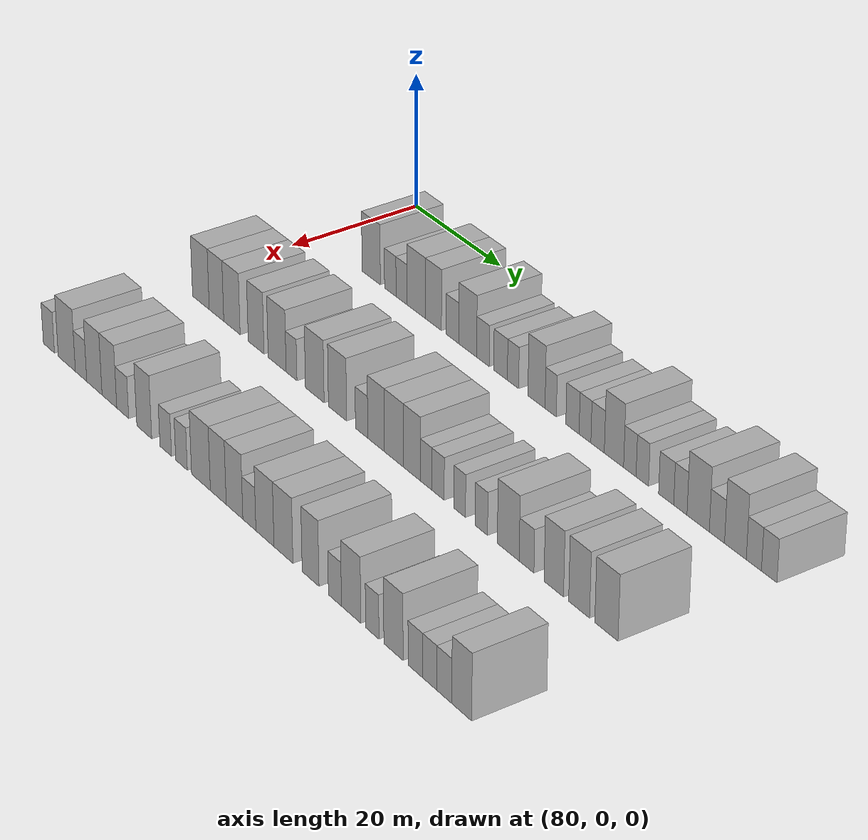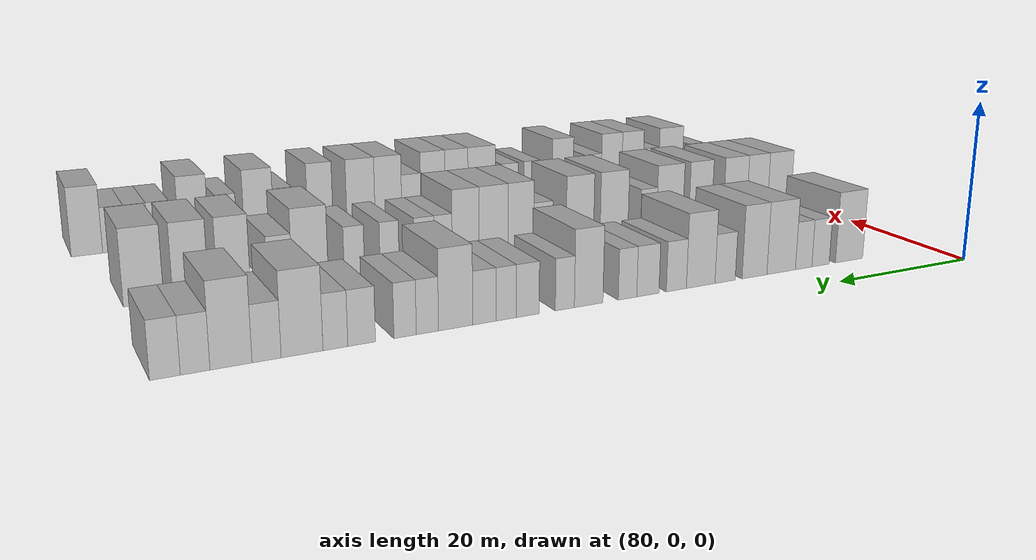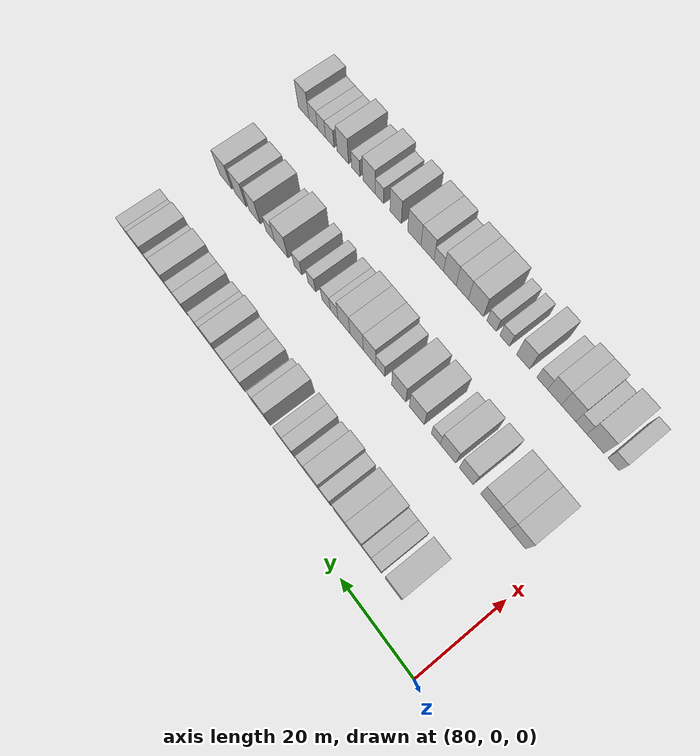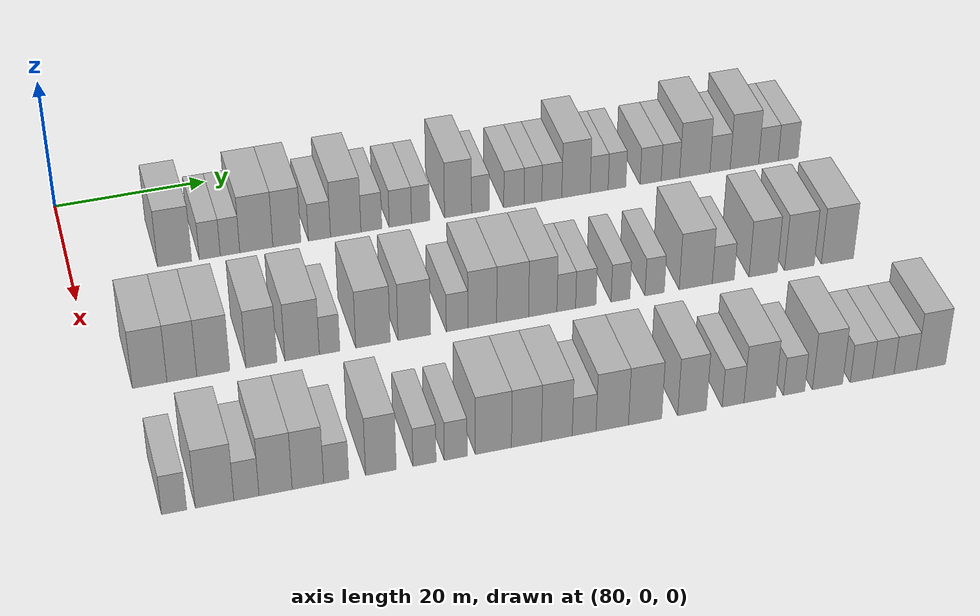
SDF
<sdf version="1.6">
 <world name="default">
  <model name="building_673">
   <static>1</static>
   <pose>91.0000 13.1581 0 0.000000 0.000000 0.000000</pose>
   <link name="link">
    <pose>0 0 4.50 0 0 0</pose>
    <collision name="collision"><geometry><box><size>10.0000 4.4125 9.0000</size></box></geometry></collision>
    <visual name="visual">
     <cast_shadows>0</cast_shadows>
     <geometry><box><size>10.0000 4.4125 9.0000</size></box></geometry>
     <material>
      <script>
       <uri>model://HANNAS_wall/materials/scripts</uri>
       <uri>model://HANNAS_wall/materials/textures</uri>
       <name>vrc/HANNAS_wall</name>
      </script>
     </material>
    </visual>
   </link>
  </model>
  <model name="building_674">
   <static>1</static>
   <pose>91.0000 17.7296 0 0.000000 0.000000 0.000000</pose>
   <link name="link">
    <pose>0 0 3.00 0 0 0</pose>
    <collision name="collision"><geometry><box><size>10.0000 2.7305 6.0000</size></box></geometry></collision>
    <visual name="visual">
     <cast_shadows>0</cast_shadows>
     <geometry><box><size>10.0000 2.7305 6.0000</size></box></geometry>
     <material>
      <script>
       <uri>model://HANNAS_wall/materials/scripts</uri>
       <uri>model://HANNAS_wall/materials/textures</uri>
       <name>vrc/HANNAS_wall</name>
      </script>
     </material>
    </visual>
   </link>
  </model>
  <model name="building_675">
   <static>1</static>
   <pose>91.0000 20.3663 0 0.000000 0.000000 0.000000</pose>
   <link name="link">
    <pose>0 0 3.00 0 0 0</pose>
    <collision name="collision"><geometry><box><size>10.0000 2.5430 6.0000</size></box></geometry></collision>
    <visual name="visual">
     <cast_shadows>0</cast_shadows>
     <geometry><box><size>10.0000 2.5430 6.0000</size></box></geometry>
     <material>
      <script>
       <uri>model://HANNAS_wall/materials/scripts</uri>
       <uri>model://HANNAS_wall/materials/textures</uri>
       <name>vrc/HANNAS_wall</name>
      </script>
     </material>
    </visual>
   </link>
  </model>
  <model name="building_676">
   <static>1</static>
   <pose>91.0000 23.8106 0 0.000000 0.000000 0.000000</pose>
   <link name="link">
    <pose>0 0 4.50 0 0 0</pose>
    <collision name="collision"><geometry><box><size>10.0000 4.3457 9.0000</size></box></geometry></collision>
    <visual name="visual">
     <cast_shadows>0</cast_shadows>
     <geometry><box><size>10.0000 4.3457 9.0000</size></box></geometry>
     <material>
      <script>
       <uri>model://HANNAS_wall/materials/scripts</uri>
       <uri>model://HANNAS_wall/materials/textures</uri>
       <name>vrc/HANNAS_wall</name>
      </script>
     </material>
    </visual>
   </link>
  </model>
  <model name="building_677">
   <static>1</static>
   <pose>91.0000 27.8287 0 0.000000 0.000000 0.000000</pose>
   <link name="link">
    <pose>0 0 4.50 0 0 0</pose>
    <collision name="collision"><geometry><box><size>10.0000 3.6906 9.0000</size></box></geometry></collision>
    <visual name="visual">
     <cast_shadows>0</cast_shadows>
     <geometry><box><size>10.0000 3.6906 9.0000</size></box></geometry>
     <material>
      <script>
       <uri>model://HANNAS_wall/materials/scripts</uri>
       <uri>model://HANNAS_wall/materials/textures</uri>
       <name>vrc/HANNAS_wall</name>
      </script>
     </material>
    </visual>
   </link>
  </model>
  <model name="building_678">
   <static>1</static>
   <pose>91.0000 32.1381 0 0.000000 0.000000 0.000000</pose>
   <link name="link">
    <pose>0 0 3.00 0 0 0</pose>
    <collision name="collision"><geometry><box><size>10.0000 2.9281 6.0000</size></box></geometry></collision>
    <visual name="visual">
     <cast_shadows>0</cast_shadows>
     <geometry><box><size>10.0000 2.9281 6.0000</size></box></geometry>
     <material>
      <script>
       <uri>model://HANNAS_wall/materials/scripts</uri>
       <uri>model://HANNAS_wall/materials/textures</uri>
       <name>vrc/HANNAS_wall</name>
      </script>
     </material>
    </visual>
   </link>
  </model>
  <model name="building_679">
   <static>1</static>
   <pose>91.0000 35.6266 0 0.000000 0.000000 0.000000</pose>
   <link name="link">
    <pose>0 0 4.50 0 0 0</pose>
    <collision name="collision"><geometry><box><size>10.0000 4.0490 9.0000</size></box></geometry></collision>
    <visual name="visual">
     <cast_shadows>0</cast_shadows>
     <geometry><box><size>10.0000 4.0490 9.0000</size></box></geometry>
     <material>
      <script>
       <uri>model://HANNAS_wall/materials/scripts</uri>
       <uri>model://HANNAS_wall/materials/textures</uri>
       <name>vrc/HANNAS_wall</name>
      </script>
     </material>
    </visual>
   </link>
  </model>
  <model name="building_680">
   <static>1</static>
   <pose>91.0000 39.0452 0 0.000000 0.000000 0.000000</pose>
   <link name="link">
    <pose>0 0 3.00 0 0 0</pose>
    <collision name="collision"><geometry><box><size>10.0000 2.7884 6.0000</size></box></geometry></collision>
    <visual name="visual">
     <cast_shadows>0</cast_shadows>
     <geometry><box><size>10.0000 2.7884 6.0000</size></box></geometry>
     <material>
      <script>
       <uri>model://HANNAS_wall/materials/scripts</uri>
       <uri>model://HANNAS_wall/materials/textures</uri>
       <name>vrc/HANNAS_wall</name>
      </script>
     </material>
    </visual>
   </link>
  </model>
  <model name="building_681">
   <static>1</static>
   <pose>91.0000 42.9386 0 0.000000 0.000000 0.000000</pose>
   <link name="link">
    <pose>0 0 3.00 0 0 0</pose>
    <collision name="collision"><geometry><box><size>10.0000 2.9983 6.0000</size></box></geometry></collision>
    <visual name="visual">
     <cast_shadows>0</cast_shadows>
     <geometry><box><size>10.0000 2.9983 6.0000</size></box></geometry>
     <material>
      <script>
       <uri>model://HANNAS_wall/materials/scripts</uri>
       <uri>model://HANNAS_wall/materials/textures</uri>
       <name>vrc/HANNAS_wall</name>
      </script>
     </material>
    </visual>
   </link>
  </model>
  <model name="building_682">
   <static>1</static>
   <pose>91.0000 45.6671 0 0.000000 0.000000 0.000000</pose>
   <link name="link">
    <pose>0 0 3.00 0 0 0</pose>
    <collision name="collision"><geometry><box><size>10.0000 2.4587 6.0000</size></box></geometry></collision>
    <visual name="visual">
     <cast_shadows>0</cast_shadows>
     <geometry><box><size>10.0000 2.4587 6.0000</size></box></geometry>
     <material>
      <script>
       <uri>model://HANNAS_wall/materials/scripts</uri>
       <uri>model://HANNAS_wall/materials/textures</uri>
       <name>vrc/HANNAS_wall</name>
      </script>
     </material>
    </visual>
   </link>
  </model>
  <model name="building_683">
   <static>1</static>
   <pose>91.0000 50.7326 0 0.000000 0.000000 0.000000</pose>
   <link name="link">
    <pose>0 0 4.50 0 0 0</pose>
    <collision name="collision"><geometry><box><size>10.0000 3.6724 9.0000</size></box></geometry></collision>
    <visual name="visual">
     <cast_shadows>0</cast_shadows>
     <geometry><box><size>10.0000 3.6724 9.0000</size></box></geometry>
     <material>
      <script>
       <uri>model://HANNAS_wall/materials/scripts</uri>
       <uri>model://HANNAS_wall/materials/textures</uri>
       <name>vrc/HANNAS_wall</name>
      </script>
     </material>
    </visual>
   </link>
  </model>
  <model name="building_684">
   <static>1</static>
   <pose>91.0000 53.7698 0 0.000000 0.000000 0.000000</pose>
   <link name="link">
    <pose>0 0 3.00 0 0 0</pose>
    <collision name="collision"><geometry><box><size>10.0000 2.4019 6.0000</size></box></geometry></collision>
    <visual name="visual">
     <cast_shadows>0</cast_shadows>
     <geometry><box><size>10.0000 2.4019 6.0000</size></box></geometry>
     <material>
      <script>
       <uri>model://HANNAS_wall/materials/scripts</uri>
       <uri>model://HANNAS_wall/materials/textures</uri>
       <name>vrc/HANNAS_wall</name>
      </script>
     </material>
    </visual>
   </link>
  </model>
  <model name="building_685">
   <static>1</static>
   <pose>91.0000 58.3557 0 0.000000 0.000000 0.000000</pose>
   <link name="link">
    <pose>0 0 3.00 0 0 0</pose>
    <collision name="collision"><geometry><box><size>10.0000 2.7699 6.0000</size></box></geometry></collision>
    <visual name="visual">
     <cast_shadows>0</cast_shadows>
     <geometry><box><size>10.0000 2.7699 6.0000</size></box></geometry>
     <material>
      <script>
       <uri>model://HANNAS_wall/materials/scripts</uri>
       <uri>model://HANNAS_wall/materials/textures</uri>
       <name>vrc/HANNAS_wall</name>
      </script>
     </material>
    </visual>
   </link>
  </model>
  <model name="building_686">
   <static>1</static>
   <pose>91.0000 60.9653 0 0.000000 0.000000 0.000000</pose>
   <link name="link">
    <pose>0 0 3.00 0 0 0</pose>
    <collision name="collision"><geometry><box><size>10.0000 2.4493 6.0000</size></box></geometry></collision>
    <visual name="visual">
     <cast_shadows>0</cast_shadows>
     <geometry><box><size>10.0000 2.4493 6.0000</size></box></geometry>
     <material>
      <script>
       <uri>model://HANNAS_wall/materials/scripts</uri>
       <uri>model://HANNAS_wall/materials/textures</uri>
       <name>vrc/HANNAS_wall</name>
      </script>
     </material>
    </visual>
   </link>
  </model>
  <model name="building_687">
   <static>1</static>
   <pose>91.0000 63.5681 0 0.000000 0.000000 0.000000</pose>
   <link name="link">
    <pose>0 0 3.00 0 0 0</pose>
    <collision name="collision"><geometry><box><size>10.0000 2.7565 6.0000</size></box></geometry></collision>
    <visual name="visual">
     <cast_shadows>0</cast_shadows>
     <geometry><box><size>10.0000 2.7565 6.0000</size></box></geometry>
     <material>
      <script>
       <uri>model://HANNAS_wall/materials/scripts</uri>
       <uri>model://HANNAS_wall/materials/textures</uri>
       <name>vrc/HANNAS_wall</name>
      </script>
     </material>
    </visual>
   </link>
  </model>
  <model name="building_688">
   <static>1</static>
   <pose>91.0000 66.9084 0 0.000000 0.000000 0.000000</pose>
   <link name="link">
    <pose>0 0 4.50 0 0 0</pose>
    <collision name="collision"><geometry><box><size>10.0000 3.9240 9.0000</size></box></geometry></collision>
    <visual name="visual">
     <cast_shadows>0</cast_shadows>
     <geometry><box><size>10.0000 3.9240 9.0000</size></box></geometry>
     <material>
      <script>
       <uri>model://HANNAS_wall/materials/scripts</uri>
       <uri>model://HANNAS_wall/materials/textures</uri>
       <name>vrc/HANNAS_wall</name>
      </script>
     </material>
    </visual>
   </link>
  </model>
  <model name="building_689">
   <static>1</static>
   <pose>91.0000 70.1219 0 0.000000 0.000000 0.000000</pose>
   <link name="link">
    <pose>0 0 3.00 0 0 0</pose>
    <collision name="collision"><geometry><box><size>10.0000 2.5031 6.0000</size></box></geometry></collision>
    <visual name="visual">
     <cast_shadows>0</cast_shadows>
     <geometry><box><size>10.0000 2.5031 6.0000</size></box></geometry>
     <material>
      <script>
       <uri>model://HANNAS_wall/materials/scripts</uri>
       <uri>model://HANNAS_wall/materials/textures</uri>
       <name>vrc/HANNAS_wall</name>
      </script>
     </material>
    </visual>
   </link>
  </model>
  <model name="building_690">
   <static>1</static>
   <pose>91.0000 72.6134 0 0.000000 0.000000 0.000000</pose>
   <link name="link">
    <pose>0 0 3.00 0 0 0</pose>
    <collision name="collision"><geometry><box><size>10.0000 2.4798 6.0000</size></box></geometry></collision>
    <visual name="visual">
     <cast_shadows>0</cast_shadows>
     <geometry><box><size>10.0000 2.4798 6.0000</size></box></geometry>
     <material>
      <script>
       <uri>model://HANNAS_wall/materials/scripts</uri>
       <uri>model://HANNAS_wall/materials/textures</uri>
       <name>vrc/HANNAS_wall</name>
      </script>
     </material>
    </visual>
   </link>
  </model>
  <model name="building_691">
   <static>1</static>
   <pose>91.0000 77.3318 0 0.000000 0.000000 0.000000</pose>
   <link name="link">
    <pose>0 0 3.00 0 0 0</pose>
    <collision name="collision"><geometry><box><size>10.0000 2.9570 6.0000</size></box></geometry></collision>
    <visual name="visual">
     <cast_shadows>0</cast_shadows>
     <geometry><box><size>10.0000 2.9570 6.0000</size></box></geometry>
     <material>
      <script>
       <uri>model://HANNAS_wall/materials/scripts</uri>
       <uri>model://HANNAS_wall/materials/textures</uri>
       <name>vrc/HANNAS_wall</name>
      </script>
     </material>
    </visual>
   </link>
  </model>
  <model name="building_692">
   <static>1</static>
   <pose>91.0000 80.1085 0 0.000000 0.000000 0.000000</pose>
   <link name="link">
    <pose>0 0 3.00 0 0 0</pose>
    <collision name="collision"><geometry><box><size>10.0000 2.5963 6.0000</size></box></geometry></collision>
    <visual name="visual">
     <cast_shadows>0</cast_shadows>
     <geometry><box><size>10.0000 2.5963 6.0000</size></box></geometry>
     <material>
      <script>
       <uri>model://HANNAS_wall/materials/scripts</uri>
       <uri>model://HANNAS_wall/materials/textures</uri>
       <name>vrc/HANNAS_wall</name>
      </script>
     </material>
    </visual>
   </link>
  </model>
  <model name="building_693">
   <static>1</static>
   <pose>91.0000 83.5472 0 0.000000 0.000000 0.000000</pose>
   <link name="link">
    <pose>0 0 4.50 0 0 0</pose>
    <collision name="collision"><geometry><box><size>10.0000 4.2810 9.0000</size></box></geometry></collision>
    <visual name="visual">
     <cast_shadows>0</cast_shadows>
     <geometry><box><size>10.0000 4.2810 9.0000</size></box></geometry>
     <material>
      <script>
       <uri>model://HANNAS_wall/materials/scripts</uri>
       <uri>model://HANNAS_wall/materials/textures</uri>
       <name>vrc/HANNAS_wall</name>
      </script>
     </material>
    </visual>
   </link>
  </model>
  <model name="building_694">
   <static>1</static>
   <pose>91.0000 87.1353 0 0.000000 0.000000 0.000000</pose>
   <link name="link">
    <pose>0 0 3.00 0 0 0</pose>
    <collision name="collision"><geometry><box><size>10.0000 2.8952 6.0000</size></box></geometry></collision>
    <visual name="visual">
     <cast_shadows>0</cast_shadows>
     <geometry><box><size>10.0000 2.8952 6.0000</size></box></geometry>
     <material>
      <script>
       <uri>model://HANNAS_wall/materials/scripts</uri>
       <uri>model://HANNAS_wall/materials/textures</uri>
       <name>vrc/HANNAS_wall</name>
      </script>
     </material>
    </visual>
   </link>
  </model>
  <model name="building_695">
   <static>1</static>
   <pose>91.0000 90.6201 0 0.000000 0.000000 0.000000</pose>
   <link name="link">
    <pose>0 0 4.50 0 0 0</pose>
    <collision name="collision"><geometry><box><size>10.0000 4.0743 9.0000</size></box></geometry></collision>
    <visual name="visual">
     <cast_shadows>0</cast_shadows>
     <geometry><box><size>10.0000 4.0743 9.0000</size></box></geometry>
     <material>
      <script>
       <uri>model://HANNAS_wall/materials/scripts</uri>
       <uri>model://HANNAS_wall/materials/textures</uri>
       <name>vrc/HANNAS_wall</name>
      </script>
     </material>
    </visual>
   </link>
  </model>
  <model name="building_696">
   <static>1</static>
   <pose>91.0000 94.0602 0 0.000000 0.000000 0.000000</pose>
   <link name="link">
    <pose>0 0 3.00 0 0 0</pose>
    <collision name="collision"><geometry><box><size>10.0000 2.8060 6.0000</size></box></geometry></collision>
    <visual name="visual">
     <cast_shadows>0</cast_shadows>
     <geometry><box><size>10.0000 2.8060 6.0000</size></box></geometry>
     <material>
      <script>
       <uri>model://HANNAS_wall/materials/scripts</uri>
       <uri>model://HANNAS_wall/materials/textures</uri>
       <name>vrc/HANNAS_wall</name>
      </script>
     </material>
    </visual>
   </link>
  </model>
  <model name="building_697">
   <static>1</static>
   <pose>91.0000 96.8893 0 0.000000 0.000000 0.000000</pose>
   <link name="link">
    <pose>0 0 3.00 0 0 0</pose>
    <collision name="collision"><geometry><box><size>10.0000 2.8521 6.0000</size></box></geometry></collision>
    <visual name="visual">
     <cast_shadows>0</cast_shadows>
     <geometry><box><size>10.0000 2.8521 6.0000</size></box></geometry>
     <material>
      <script>
       <uri>model://HANNAS_wall/materials/scripts</uri>
       <uri>model://HANNAS_wall/materials/textures</uri>
       <name>vrc/HANNAS_wall</name>
      </script>
     </material>
    </visual>
   </link>
  </model>
  <model name="building_865">
   <static>1</static>
   <pose>113.0000 6.3063 0 0.000000 0.000000 0.000000</pose>
   <link name="link">
    <pose>0 0 4.50 0 0 0</pose>
    <collision name="collision"><geometry><box><size>10.0000 4.2231 9.0000</size></box></geometry></collision>
    <visual name="visual">
     <cast_shadows>0</cast_shadows>
     <geometry><box><size>10.0000 4.2231 9.0000</size></box></geometry>
     <material>
      <script>
       <uri>model://HANNAS_wall/materials/scripts</uri>
       <uri>model://HANNAS_wall/materials/textures</uri>
       <name>vrc/HANNAS_wall</name>
      </script>
     </material>
    </visual>
   </link>
  </model>
  <model name="building_866">
   <static>1</static>
   <pose>113.0000 10.2472 0 0.000000 0.000000 0.000000</pose>
   <link name="link">
    <pose>0 0 4.50 0 0 0</pose>
    <collision name="collision"><geometry><box><size>10.0000 3.6586 9.0000</size></box></geometry></collision>
    <visual name="visual">
     <cast_shadows>0</cast_shadows>
     <geometry><box><size>10.0000 3.6586 9.0000</size></box></geometry>
     <material>
      <script>
       <uri>model://HANNAS_wall/materials/scripts</uri>
       <uri>model://HANNAS_wall/materials/textures</uri>
       <name>vrc/HANNAS_wall</name>
      </script>
     </material>
    </visual>
   </link>
  </model>
  <model name="building_867">
   <static>1</static>
   <pose>113.0000 14.1046 0 0.000000 0.000000 0.000000</pose>
   <link name="link">
    <pose>0 0 4.50 0 0 0</pose>
    <collision name="collision"><geometry><box><size>10.0000 4.0563 9.0000</size></box></geometry></collision>
    <visual name="visual">
     <cast_shadows>0</cast_shadows>
     <geometry><box><size>10.0000 4.0563 9.0000</size></box></geometry>
     <material>
      <script>
       <uri>model://HANNAS_wall/materials/scripts</uri>
       <uri>model://HANNAS_wall/materials/textures</uri>
       <name>vrc/HANNAS_wall</name>
      </script>
     </material>
    </visual>
   </link>
  </model>
  <model name="building_868">
   <static>1</static>
   <pose>113.0000 20.0534 0 0.000000 0.000000 0.000000</pose>
   <link name="link">
    <pose>0 0 4.50 0 0 0</pose>
    <collision name="collision"><geometry><box><size>10.0000 3.8412 9.0000</size></box></geometry></collision>
    <visual name="visual">
     <cast_shadows>0</cast_shadows>
     <geometry><box><size>10.0000 3.8412 9.0000</size></box></geometry>
     <material>
      <script>
       <uri>model://HANNAS_wall/materials/scripts</uri>
       <uri>model://HANNAS_wall/materials/textures</uri>
       <name>vrc/HANNAS_wall</name>
      </script>
     </material>
    </visual>
   </link>
  </model>
  <model name="building_869">
   <static>1</static>
   <pose>113.0000 25.1283 0 0.000000 0.000000 0.000000</pose>
   <link name="link">
    <pose>0 0 4.50 0 0 0</pose>
    <collision name="collision"><geometry><box><size>10.0000 4.3086 9.0000</size></box></geometry></collision>
    <visual name="visual">
     <cast_shadows>0</cast_shadows>
     <geometry><box><size>10.0000 4.3086 9.0000</size></box></geometry>
     <material>
      <script>
       <uri>model://HANNAS_wall/materials/scripts</uri>
       <uri>model://HANNAS_wall/materials/textures</uri>
       <name>vrc/HANNAS_wall</name>
      </script>
     </material>
    </visual>
   </link>
  </model>
  <model name="building_870">
   <static>1</static>
   <pose>113.0000 28.5638 0 0.000000 0.000000 0.000000</pose>
   <link name="link">
    <pose>0 0 3.00 0 0 0</pose>
    <collision name="collision"><geometry><box><size>10.0000 2.5622 6.0000</size></box></geometry></collision>
    <visual name="visual">
     <cast_shadows>0</cast_shadows>
     <geometry><box><size>10.0000 2.5622 6.0000</size></box></geometry>
     <material>
      <script>
       <uri>model://HANNAS_wall/materials/scripts</uri>
       <uri>model://HANNAS_wall/materials/textures</uri>
       <name>vrc/HANNAS_wall</name>
      </script>
     </material>
    </visual>
   </link>
  </model>
  <model name="building_871">
   <static>1</static>
   <pose>113.0000 34.0221 0 0.000000 0.000000 0.000000</pose>
   <link name="link">
    <pose>0 0 4.50 0 0 0</pose>
    <collision name="collision"><geometry><box><size>10.0000 4.3545 9.0000</size></box></geometry></collision>
    <visual name="visual">
     <cast_shadows>0</cast_shadows>
     <geometry><box><size>10.0000 4.3545 9.0000</size></box></geometry>
     <material>
      <script>
       <uri>model://HANNAS_wall/materials/scripts</uri>
       <uri>model://HANNAS_wall/materials/textures</uri>
       <name>vrc/HANNAS_wall</name>
      </script>
     </material>
    </visual>
   </link>
  </model>
  <model name="building_872">
   <static>1</static>
   <pose>113.0000 39.2818 0 0.000000 0.000000 0.000000</pose>
   <link name="link">
    <pose>0 0 4.50 0 0 0</pose>
    <collision name="collision"><geometry><box><size>10.0000 4.1649 9.0000</size></box></geometry></collision>
    <visual name="visual">
     <cast_shadows>0</cast_shadows>
     <geometry><box><size>10.0000 4.1649 9.0000</size></box></geometry>
     <material>
      <script>
       <uri>model://HANNAS_wall/materials/scripts</uri>
       <uri>model://HANNAS_wall/materials/textures</uri>
       <name>vrc/HANNAS_wall</name>
      </script>
     </material>
    </visual>
   </link>
  </model>
  <model name="building_873">
   <static>1</static>
   <pose>113.0000 44.7479 0 0.000000 0.000000 0.000000</pose>
   <link name="link">
    <pose>0 0 3.00 0 0 0</pose>
    <collision name="collision"><geometry><box><size>10.0000 2.7672 6.0000</size></box></geometry></collision>
    <visual name="visual">
     <cast_shadows>0</cast_shadows>
     <geometry><box><size>10.0000 2.7672 6.0000</size></box></geometry>
     <material>
      <script>
       <uri>model://HANNAS_wall/materials/scripts</uri>
       <uri>model://HANNAS_wall/materials/textures</uri>
       <name>vrc/HANNAS_wall</name>
      </script>
     </material>
    </visual>
   </link>
  </model>
  <model name="building_874">
   <static>1</static>
   <pose>113.0000 47.9868 0 0.000000 0.000000 0.000000</pose>
   <link name="link">
    <pose>0 0 4.50 0 0 0</pose>
    <collision name="collision"><geometry><box><size>10.0000 3.7106 9.0000</size></box></geometry></collision>
    <visual name="visual">
     <cast_shadows>0</cast_shadows>
     <geometry><box><size>10.0000 3.7106 9.0000</size></box></geometry>
     <material>
      <script>
       <uri>model://HANNAS_wall/materials/scripts</uri>
       <uri>model://HANNAS_wall/materials/textures</uri>
       <name>vrc/HANNAS_wall</name>
      </script>
     </material>
    </visual>
   </link>
  </model>
  <model name="building_875">
   <static>1</static>
   <pose>113.0000 51.9077 0 0.000000 0.000000 0.000000</pose>
   <link name="link">
    <pose>0 0 4.50 0 0 0</pose>
    <collision name="collision"><geometry><box><size>10.0000 4.1312 9.0000</size></box></geometry></collision>
    <visual name="visual">
     <cast_shadows>0</cast_shadows>
     <geometry><box><size>10.0000 4.1312 9.0000</size></box></geometry>
     <material>
      <script>
       <uri>model://HANNAS_wall/materials/scripts</uri>
       <uri>model://HANNAS_wall/materials/textures</uri>
       <name>vrc/HANNAS_wall</name>
      </script>
     </material>
    </visual>
   </link>
  </model>
  <model name="building_876">
   <static>1</static>
   <pose>113.0000 55.8192 0 0.000000 0.000000 0.000000</pose>
   <link name="link">
    <pose>0 0 4.50 0 0 0</pose>
    <collision name="collision"><geometry><box><size>10.0000 3.6919 9.0000</size></box></geometry></collision>
    <visual name="visual">
     <cast_shadows>0</cast_shadows>
     <geometry><box><size>10.0000 3.6919 9.0000</size></box></geometry>
     <material>
      <script>
       <uri>model://HANNAS_wall/materials/scripts</uri>
       <uri>model://HANNAS_wall/materials/textures</uri>
       <name>vrc/HANNAS_wall</name>
      </script>
     </material>
    </visual>
   </link>
  </model>
  <model name="building_877">
   <static>1</static>
   <pose>113.0000 58.8852 0 0.000000 0.000000 0.000000</pose>
   <link name="link">
    <pose>0 0 3.00 0 0 0</pose>
    <collision name="collision"><geometry><box><size>10.0000 2.4401 6.0000</size></box></geometry></collision>
    <visual name="visual">
     <cast_shadows>0</cast_shadows>
     <geometry><box><size>10.0000 2.4401 6.0000</size></box></geometry>
     <material>
      <script>
       <uri>model://HANNAS_wall/materials/scripts</uri>
       <uri>model://HANNAS_wall/materials/textures</uri>
       <name>vrc/HANNAS_wall</name>
      </script>
     </material>
    </visual>
   </link>
  </model>
  <model name="building_878">
   <static>1</static>
   <pose>113.0000 61.4410 0 0.000000 0.000000 0.000000</pose>
   <link name="link">
    <pose>0 0 3.00 0 0 0</pose>
    <collision name="collision"><geometry><box><size>10.0000 2.6716 6.0000</size></box></geometry></collision>
    <visual name="visual">
     <cast_shadows>0</cast_shadows>
     <geometry><box><size>10.0000 2.6716 6.0000</size></box></geometry>
     <material>
      <script>
       <uri>model://HANNAS_wall/materials/scripts</uri>
       <uri>model://HANNAS_wall/materials/textures</uri>
       <name>vrc/HANNAS_wall</name>
      </script>
     </material>
    </visual>
   </link>
  </model>
  <model name="building_879">
   <static>1</static>
   <pose>113.0000 66.0149 0 0.000000 0.000000 0.000000</pose>
   <link name="link">
    <pose>0 0 3.00 0 0 0</pose>
    <collision name="collision"><geometry><box><size>10.0000 2.4762 6.0000</size></box></geometry></collision>
    <visual name="visual">
     <cast_shadows>0</cast_shadows>
     <geometry><box><size>10.0000 2.4762 6.0000</size></box></geometry>
     <material>
      <script>
       <uri>model://HANNAS_wall/materials/scripts</uri>
       <uri>model://HANNAS_wall/materials/textures</uri>
       <name>vrc/HANNAS_wall</name>
      </script>
     </material>
    </visual>
   </link>
  </model>
  <model name="building_880">
   <static>1</static>
   <pose>113.0000 70.5360 0 0.000000 0.000000 0.000000</pose>
   <link name="link">
    <pose>0 0 3.00 0 0 0</pose>
    <collision name="collision"><geometry><box><size>10.0000 2.5661 6.0000</size></box></geometry></collision>
    <visual name="visual">
     <cast_shadows>0</cast_shadows>
     <geometry><box><size>10.0000 2.5661 6.0000</size></box></geometry>
     <material>
      <script>
       <uri>model://HANNAS_wall/materials/scripts</uri>
       <uri>model://HANNAS_wall/materials/textures</uri>
       <name>vrc/HANNAS_wall</name>
      </script>
     </material>
    </visual>
   </link>
  </model>
  <model name="building_881">
   <static>1</static>
   <pose>113.0000 76.0263 0 0.000000 0.000000 0.000000</pose>
   <link name="link">
    <pose>0 0 4.50 0 0 0</pose>
    <collision name="collision"><geometry><box><size>10.0000 4.4145 9.0000</size></box></geometry></collision>
    <visual name="visual">
     <cast_shadows>0</cast_shadows>
     <geometry><box><size>10.0000 4.4145 9.0000</size></box></geometry>
     <material>
      <script>
       <uri>model://HANNAS_wall/materials/scripts</uri>
       <uri>model://HANNAS_wall/materials/textures</uri>
       <name>vrc/HANNAS_wall</name>
      </script>
     </material>
    </visual>
   </link>
  </model>
  <model name="building_882">
   <static>1</static>
   <pose>113.0000 79.7125 0 0.000000 0.000000 0.000000</pose>
   <link name="link">
    <pose>0 0 3.00 0 0 0</pose>
    <collision name="collision"><geometry><box><size>10.0000 2.9577 6.0000</size></box></geometry></collision>
    <visual name="visual">
     <cast_shadows>0</cast_shadows>
     <geometry><box><size>10.0000 2.9577 6.0000</size></box></geometry>
     <material>
      <script>
       <uri>model://HANNAS_wall/materials/scripts</uri>
       <uri>model://HANNAS_wall/materials/textures</uri>
       <name>vrc/HANNAS_wall</name>
      </script>
     </material>
    </visual>
   </link>
  </model>
  <model name="building_883">
   <static>1</static>
   <pose>113.0000 85.1012 0 0.000000 0.000000 0.000000</pose>
   <link name="link">
    <pose>0 0 4.50 0 0 0</pose>
    <collision name="collision"><geometry><box><size>10.0000 3.8198 9.0000</size></box></geometry></collision>
    <visual name="visual">
     <cast_shadows>0</cast_shadows>
     <geometry><box><size>10.0000 3.8198 9.0000</size></box></geometry>
     <material>
      <script>
       <uri>model://HANNAS_wall/materials/scripts</uri>
       <uri>model://HANNAS_wall/materials/textures</uri>
       <name>vrc/HANNAS_wall</name>
      </script>
     </material>
    </visual>
   </link>
  </model>
  <model name="building_884">
   <static>1</static>
   <pose>113.0000 90.0246 0 0.000000 0.000000 0.000000</pose>
   <link name="link">
    <pose>0 0 4.50 0 0 0</pose>
    <collision name="collision"><geometry><box><size>10.0000 4.0268 9.0000</size></box></geometry></collision>
    <visual name="visual">
     <cast_shadows>0</cast_shadows>
     <geometry><box><size>10.0000 4.0268 9.0000</size></box></geometry>
     <material>
      <script>
       <uri>model://HANNAS_wall/materials/scripts</uri>
       <uri>model://HANNAS_wall/materials/textures</uri>
       <name>vrc/HANNAS_wall</name>
      </script>
     </material>
    </visual>
   </link>
  </model>
  <model name="building_885">
   <static>1</static>
   <pose>113.0000 95.2373 0 0.000000 0.000000 0.000000</pose>
   <link name="link">
    <pose>0 0 4.50 0 0 0</pose>
    <collision name="collision"><geometry><box><size>10.0000 4.3986 9.0000</size></box></geometry></collision>
    <visual name="visual">
     <cast_shadows>0</cast_shadows>
     <geometry><box><size>10.0000 4.3986 9.0000</size></box></geometry>
     <material>
      <script>
       <uri>model://HANNAS_wall/materials/scripts</uri>
       <uri>model://HANNAS_wall/materials/textures</uri>
       <name>vrc/HANNAS_wall</name>
      </script>
     </material>
    </visual>
   </link>
  </model>
  <model name="building_1037">
   <static>1</static>
   <pose>135.0000 5.4816 0 0.000000 0.000000 0.000000</pose>
   <link name="link">
    <pose>0 0 3.00 0 0 0</pose>
    <collision name="collision"><geometry><box><size>10.0000 2.9102 6.0000</size></box></geometry></collision>
    <visual name="visual">
     <cast_shadows>0</cast_shadows>
     <geometry><box><size>10.0000 2.9102 6.0000</size></box></geometry>
     <material>
      <script>
       <uri>model://HANNAS_wall/materials/scripts</uri>
       <uri>model://HANNAS_wall/materials/textures</uri>
       <name>vrc/HANNAS_wall</name>
      </script>
     </material>
    </visual>
   </link>
  </model>
  <model name="building_1038">
   <static>1</static>
   <pose>135.0000 10.1706 0 0.000000 0.000000 0.000000</pose>
   <link name="link">
    <pose>0 0 4.50 0 0 0</pose>
    <collision name="collision"><geometry><box><size>10.0000 4.4677 9.0000</size></box></geometry></collision>
    <visual name="visual">
     <cast_shadows>0</cast_shadows>
     <geometry><box><size>10.0000 4.4677 9.0000</size></box></geometry>
     <material>
      <script>
       <uri>model://HANNAS_wall/materials/scripts</uri>
       <uri>model://HANNAS_wall/materials/textures</uri>
       <name>vrc/HANNAS_wall</name>
      </script>
     </material>
    </visual>
   </link>
  </model>
  <model name="building_1039">
   <static>1</static>
   <pose>135.0000 13.8694 0 0.000000 0.000000 0.000000</pose>
   <link name="link">
    <pose>0 0 3.00 0 0 0</pose>
    <collision name="collision"><geometry><box><size>10.0000 2.9299 6.0000</size></box></geometry></collision>
    <visual name="visual">
     <cast_shadows>0</cast_shadows>
     <geometry><box><size>10.0000 2.9299 6.0000</size></box></geometry>
     <material>
      <script>
       <uri>model://HANNAS_wall/materials/scripts</uri>
       <uri>model://HANNAS_wall/materials/textures</uri>
       <name>vrc/HANNAS_wall</name>
      </script>
     </material>
    </visual>
   </link>
  </model>
  <model name="building_1040">
   <static>1</static>
   <pose>135.0000 17.2824 0 0.000000 0.000000 0.000000</pose>
   <link name="link">
    <pose>0 0 4.50 0 0 0</pose>
    <collision name="collision"><geometry><box><size>10.0000 3.8961 9.0000</size></box></geometry></collision>
    <visual name="visual">
     <cast_shadows>0</cast_shadows>
     <geometry><box><size>10.0000 3.8961 9.0000</size></box></geometry>
     <material>
      <script>
       <uri>model://HANNAS_wall/materials/scripts</uri>
       <uri>model://HANNAS_wall/materials/textures</uri>
       <name>vrc/HANNAS_wall</name>
      </script>
     </material>
    </visual>
   </link>
  </model>
  <model name="building_1041">
   <static>1</static>
   <pose>135.0000 21.0845 0 0.000000 0.000000 0.000000</pose>
   <link name="link">
    <pose>0 0 4.50 0 0 0</pose>
    <collision name="collision"><geometry><box><size>10.0000 3.7081 9.0000</size></box></geometry></collision>
    <visual name="visual">
     <cast_shadows>0</cast_shadows>
     <geometry><box><size>10.0000 3.7081 9.0000</size></box></geometry>
     <material>
      <script>
       <uri>model://HANNAS_wall/materials/scripts</uri>
       <uri>model://HANNAS_wall/materials/textures</uri>
       <name>vrc/HANNAS_wall</name>
      </script>
     </material>
    </visual>
   </link>
  </model>
  <model name="building_1042">
   <static>1</static>
   <pose>135.0000 24.4241 0 0.000000 0.000000 0.000000</pose>
   <link name="link">
    <pose>0 0 3.00 0 0 0</pose>
    <collision name="collision"><geometry><box><size>10.0000 2.9713 6.0000</size></box></geometry></collision>
    <visual name="visual">
     <cast_shadows>0</cast_shadows>
     <geometry><box><size>10.0000 2.9713 6.0000</size></box></geometry>
     <material>
      <script>
       <uri>model://HANNAS_wall/materials/scripts</uri>
       <uri>model://HANNAS_wall/materials/textures</uri>
       <name>vrc/HANNAS_wall</name>
      </script>
     </material>
    </visual>
   </link>
  </model>
  <model name="building_1043">
   <static>1</static>
   <pose>135.0000 29.7362 0 0.000000 0.000000 0.000000</pose>
   <link name="link">
    <pose>0 0 4.50 0 0 0</pose>
    <collision name="collision"><geometry><box><size>10.0000 3.6529 9.0000</size></box></geometry></collision>
    <visual name="visual">
     <cast_shadows>0</cast_shadows>
     <geometry><box><size>10.0000 3.6529 9.0000</size></box></geometry>
     <material>
      <script>
       <uri>model://HANNAS_wall/materials/scripts</uri>
       <uri>model://HANNAS_wall/materials/textures</uri>
       <name>vrc/HANNAS_wall</name>
      </script>
     </material>
    </visual>
   </link>
  </model>
  <model name="building_1044">
   <static>1</static>
   <pose>135.0000 34.9528 0 0.000000 0.000000 0.000000</pose>
   <link name="link">
    <pose>0 0 3.00 0 0 0</pose>
    <collision name="collision"><geometry><box><size>10.0000 2.7802 6.0000</size></box></geometry></collision>
    <visual name="visual">
     <cast_shadows>0</cast_shadows>
     <geometry><box><size>10.0000 2.7802 6.0000</size></box></geometry>
     <material>
      <script>
       <uri>model://HANNAS_wall/materials/scripts</uri>
       <uri>model://HANNAS_wall/materials/textures</uri>
       <name>vrc/HANNAS_wall</name>
      </script>
     </material>
    </visual>
   </link>
  </model>
  <model name="building_1045">
   <static>1</static>
   <pose>135.0000 38.7195 0 0.000000 0.000000 0.000000</pose>
   <link name="link">
    <pose>0 0 3.00 0 0 0</pose>
    <collision name="collision"><geometry><box><size>10.0000 2.7533 6.0000</size></box></geometry></collision>
    <visual name="visual">
     <cast_shadows>0</cast_shadows>
     <geometry><box><size>10.0000 2.7533 6.0000</size></box></geometry>
     <material>
      <script>
       <uri>model://HANNAS_wall/materials/scripts</uri>
       <uri>model://HANNAS_wall/materials/textures</uri>
       <name>vrc/HANNAS_wall</name>
      </script>
     </material>
    </visual>
   </link>
  </model>
  <model name="building_1046">
   <static>1</static>
   <pose>135.0000 43.2983 0 0.000000 0.000000 0.000000</pose>
   <link name="link">
    <pose>0 0 4.50 0 0 0</pose>
    <collision name="collision"><geometry><box><size>10.0000 4.4042 9.0000</size></box></geometry></collision>
    <visual name="visual">
     <cast_shadows>0</cast_shadows>
     <geometry><box><size>10.0000 4.4042 9.0000</size></box></geometry>
     <material>
      <script>
       <uri>model://HANNAS_wall/materials/scripts</uri>
       <uri>model://HANNAS_wall/materials/textures</uri>
       <name>vrc/HANNAS_wall</name>
      </script>
     </material>
    </visual>
   </link>
  </model>
  <model name="building_1047">
   <static>1</static>
   <pose>135.0000 47.3296 0 0.000000 0.000000 0.000000</pose>
   <link name="link">
    <pose>0 0 4.50 0 0 0</pose>
    <collision name="collision"><geometry><box><size>10.0000 3.6584 9.0000</size></box></geometry></collision>
    <visual name="visual">
     <cast_shadows>0</cast_shadows>
     <geometry><box><size>10.0000 3.6584 9.0000</size></box></geometry>
     <material>
      <script>
       <uri>model://HANNAS_wall/materials/scripts</uri>
       <uri>model://HANNAS_wall/materials/textures</uri>
       <name>vrc/HANNAS_wall</name>
      </script>
     </material>
    </visual>
   </link>
  </model>
  <model name="building_1048">
   <static>1</static>
   <pose>135.0000 51.0523 0 0.000000 0.000000 0.000000</pose>
   <link name="link">
    <pose>0 0 4.50 0 0 0</pose>
    <collision name="collision"><geometry><box><size>10.0000 3.7870 9.0000</size></box></geometry></collision>
    <visual name="visual">
     <cast_shadows>0</cast_shadows>
     <geometry><box><size>10.0000 3.7870 9.0000</size></box></geometry>
     <material>
      <script>
       <uri>model://HANNAS_wall/materials/scripts</uri>
       <uri>model://HANNAS_wall/materials/textures</uri>
       <name>vrc/HANNAS_wall</name>
      </script>
     </material>
    </visual>
   </link>
  </model>
  <model name="building_1049">
   <static>1</static>
   <pose>135.0000 54.4145 0 0.000000 0.000000 0.000000</pose>
   <link name="link">
    <pose>0 0 3.00 0 0 0</pose>
    <collision name="collision"><geometry><box><size>10.0000 2.9374 6.0000</size></box></geometry></collision>
    <visual name="visual">
     <cast_shadows>0</cast_shadows>
     <geometry><box><size>10.0000 2.9374 6.0000</size></box></geometry>
     <material>
      <script>
       <uri>model://HANNAS_wall/materials/scripts</uri>
       <uri>model://HANNAS_wall/materials/textures</uri>
       <name>vrc/HANNAS_wall</name>
      </script>
     </material>
    </visual>
   </link>
  </model>
  <model name="building_1050">
   <static>1</static>
   <pose>135.0000 57.8994 0 0.000000 0.000000 0.000000</pose>
   <link name="link">
    <pose>0 0 4.50 0 0 0</pose>
    <collision name="collision"><geometry><box><size>10.0000 4.0323 9.0000</size></box></geometry></collision>
    <visual name="visual">
     <cast_shadows>0</cast_shadows>
     <geometry><box><size>10.0000 4.0323 9.0000</size></box></geometry>
     <material>
      <script>
       <uri>model://HANNAS_wall/materials/scripts</uri>
       <uri>model://HANNAS_wall/materials/textures</uri>
       <name>vrc/HANNAS_wall</name>
      </script>
     </material>
    </visual>
   </link>
  </model>
  <model name="building_1051">
   <static>1</static>
   <pose>135.0000 61.9947 0 0.000000 0.000000 0.000000</pose>
   <link name="link">
    <pose>0 0 4.50 0 0 0</pose>
    <collision name="collision"><geometry><box><size>10.0000 4.1584 9.0000</size></box></geometry></collision>
    <visual name="visual">
     <cast_shadows>0</cast_shadows>
     <geometry><box><size>10.0000 4.1584 9.0000</size></box></geometry>
     <material>
      <script>
       <uri>model://HANNAS_wall/materials/scripts</uri>
       <uri>model://HANNAS_wall/materials/textures</uri>
       <name>vrc/HANNAS_wall</name>
      </script>
     </material>
    </visual>
   </link>
  </model>
  <model name="building_1052">
   <static>1</static>
   <pose>135.0000 67.8845 0 0.000000 0.000000 0.000000</pose>
   <link name="link">
    <pose>0 0 4.50 0 0 0</pose>
    <collision name="collision"><geometry><box><size>10.0000 3.6210 9.0000</size></box></geometry></collision>
    <visual name="visual">
     <cast_shadows>0</cast_shadows>
     <geometry><box><size>10.0000 3.6210 9.0000</size></box></geometry>
     <material>
      <script>
       <uri>model://HANNAS_wall/materials/scripts</uri>
       <uri>model://HANNAS_wall/materials/textures</uri>
       <name>vrc/HANNAS_wall</name>
      </script>
     </material>
    </visual>
   </link>
  </model>
  <model name="building_1053">
   <static>1</static>
   <pose>135.0000 73.0740 0 0.000000 0.000000 0.000000</pose>
   <link name="link">
    <pose>0 0 3.00 0 0 0</pose>
    <collision name="collision"><geometry><box><size>10.0000 2.7581 6.0000</size></box></geometry></collision>
    <visual name="visual">
     <cast_shadows>0</cast_shadows>
     <geometry><box><size>10.0000 2.7581 6.0000</size></box></geometry>
     <material>
      <script>
       <uri>model://HANNAS_wall/materials/scripts</uri>
       <uri>model://HANNAS_wall/materials/textures</uri>
       <name>vrc/HANNAS_wall</name>
      </script>
     </material>
    </visual>
   </link>
  </model>
  <model name="building_1054">
   <static>1</static>
   <pose>135.0000 76.4706 0 0.000000 0.000000 0.000000</pose>
   <link name="link">
    <pose>0 0 4.50 0 0 0</pose>
    <collision name="collision"><geometry><box><size>10.0000 4.0352 9.0000</size></box></geometry></collision>
    <visual name="visual">
     <cast_shadows>0</cast_shadows>
     <geometry><box><size>10.0000 4.0352 9.0000</size></box></geometry>
     <material>
      <script>
       <uri>model://HANNAS_wall/materials/scripts</uri>
       <uri>model://HANNAS_wall/materials/textures</uri>
       <name>vrc/HANNAS_wall</name>
      </script>
     </material>
    </visual>
   </link>
  </model>
  <model name="building_1055">
   <static>1</static>
   <pose>135.0000 80.8545 0 0.000000 0.000000 0.000000</pose>
   <link name="link">
    <pose>0 0 3.00 0 0 0</pose>
    <collision name="collision"><geometry><box><size>10.0000 2.7325 6.0000</size></box></geometry></collision>
    <visual name="visual">
     <cast_shadows>0</cast_shadows>
     <geometry><box><size>10.0000 2.7325 6.0000</size></box></geometry>
     <material>
      <script>
       <uri>model://HANNAS_wall/materials/scripts</uri>
       <uri>model://HANNAS_wall/materials/textures</uri>
       <name>vrc/HANNAS_wall</name>
      </script>
     </material>
    </visual>
   </link>
  </model>
  <model name="building_1056">
   <static>1</static>
   <pose>135.0000 85.1668 0 0.000000 0.000000 0.000000</pose>
   <link name="link">
    <pose>0 0 4.50 0 0 0</pose>
    <collision name="collision"><geometry><box><size>10.0000 3.8921 9.0000</size></box></geometry></collision>
    <visual name="visual">
     <cast_shadows>0</cast_shadows>
     <geometry><box><size>10.0000 3.8921 9.0000</size></box></geometry>
     <material>
      <script>
       <uri>model://HANNAS_wall/materials/scripts</uri>
       <uri>model://HANNAS_wall/materials/textures</uri>
       <name>vrc/HANNAS_wall</name>
      </script>
     </material>
    </visual>
   </link>
  </model>
  <model name="building_1057">
   <static>1</static>
   <pose>135.0000 89.5700 0 0.000000 0.000000 0.000000</pose>
   <link name="link">
    <pose>0 0 3.00 0 0 0</pose>
    <collision name="collision"><geometry><box><size>10.0000 2.9143 6.0000</size></box></geometry></collision>
    <visual name="visual">
     <cast_shadows>0</cast_shadows>
     <geometry><box><size>10.0000 2.9143 6.0000</size></box></geometry>
     <material>
      <script>
       <uri>model://HANNAS_wall/materials/scripts</uri>
       <uri>model://HANNAS_wall/materials/textures</uri>
       <name>vrc/HANNAS_wall</name>
      </script>
     </material>
    </visual>
   </link>
  </model>
  <model name="building_1058">
   <static>1</static>
   <pose>135.0000 92.4149 0 0.000000 0.000000 0.000000</pose>
   <link name="link">
    <pose>0 0 3.00 0 0 0</pose>
    <collision name="collision"><geometry><box><size>10.0000 2.7755 6.0000</size></box></geometry></collision>
    <visual name="visual">
     <cast_shadows>0</cast_shadows>
     <geometry><box><size>10.0000 2.7755 6.0000</size></box></geometry>
     <material>
      <script>
       <uri>model://HANNAS_wall/materials/scripts</uri>
       <uri>model://HANNAS_wall/materials/textures</uri>
       <name>vrc/HANNAS_wall</name>
      </script>
     </material>
    </visual>
   </link>
  </model>
  <model name="building_1059">
   <static>1</static>
   <pose>135.0000 95.2676 0 0.000000 0.000000 0.000000</pose>
   <link name="link">
    <pose>0 0 3.00 0 0 0</pose>
    <collision name="collision"><geometry><box><size>10.0000 2.9300 6.0000</size></box></geometry></collision>
    <visual name="visual">
     <cast_shadows>0</cast_shadows>
     <geometry><box><size>10.0000 2.9300 6.0000</size></box></geometry>
     <material>
      <script>
       <uri>model://HANNAS_wall/materials/scripts</uri>
       <uri>model://HANNAS_wall/materials/textures</uri>
       <name>vrc/HANNAS_wall</name>
      </script>
     </material>
    </visual>
   </link>
  </model>
  <model name="building_1060">
   <static>1</static>
   <pose>135.0000 98.6404 0 0.000000 0.000000 0.000000</pose>
   <link name="link">
    <pose>0 0 4.50 0 0 0</pose>
    <collision name="collision"><geometry><box><size>10.0000 3.8155 9.0000</size></box></geometry></collision>
    <visual name="visual">
     <cast_shadows>0</cast_shadows>
     <geometry><box><size>10.0000 3.8155 9.0000</size></box></geometry>
     <material>
      <script>
       <uri>model://HANNAS_wall/materials/scripts</uri>
       <uri>model://HANNAS_wall/materials/textures</uri>
       <name>vrc/HANNAS_wall</name>
      </script>
     </material>
    </visual>
   </link>
  </model>
 </world>
</sdf>
